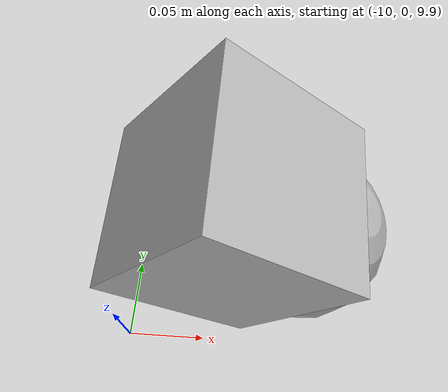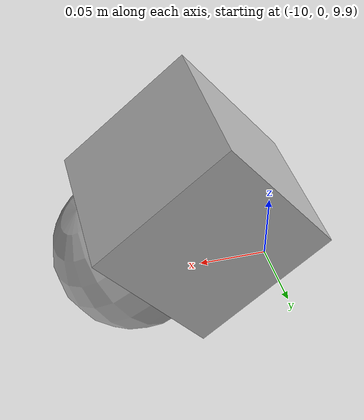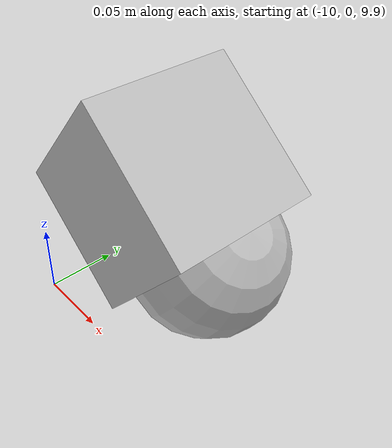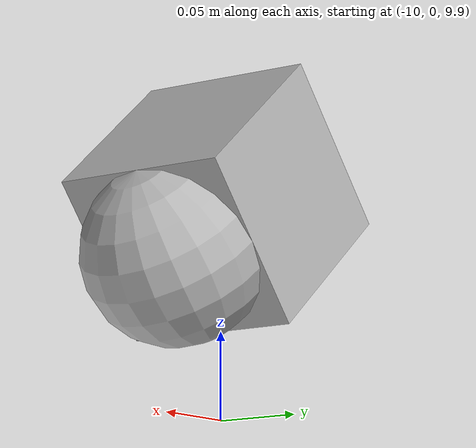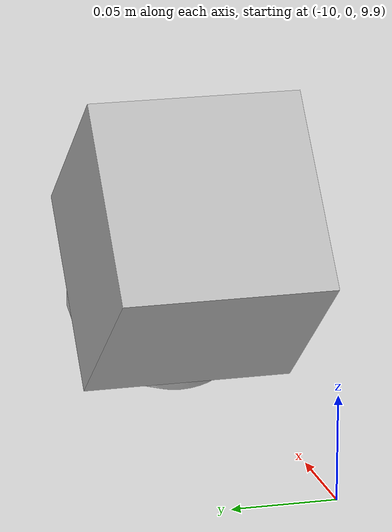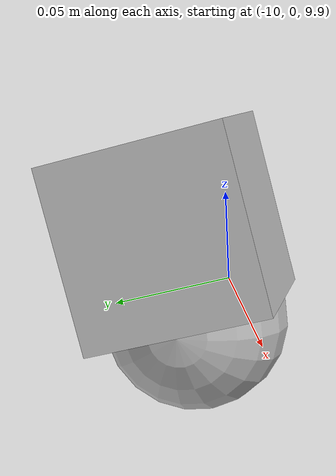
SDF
<?xml version="1.0" ?>
<!--
  Optimized camera model for headless server mode with reduced CPU usage.
  Features:
  - Lower resolution (320x240)
  - Reduced update rate (5Hz)
  - Optimized for server environments
-->
<sdf version="1.6">
  <model name="wot_camera">
    <static>true</static>
    <pose>-10 0 10 0 0.7 0</pose>
    <link name="link">
      <pose>0.05 0.05 0.05 0 0 0</pose>
      <inertial>
        <mass>0.1</mass>
        <inertia>
          <ixx>0.000166667</ixx>
          <iyy>0.000166667</iyy>
          <izz>0.000166667</izz>
        </inertia>
      </inertial>
      <collision name="collision">
        <geometry>
          <box>
            <size>0.1 0.1 0.1</size>
          </box>
        </geometry>
      </collision>
      <visual name="visual">
        <geometry>
          <box>
            <size>0.1 0.1 0.1</size>
          </box>
        </geometry>
      </visual>

      <visual name="lens_visual">
        <pose>0.05 0 0 0 0 0</pose>
        <geometry>
          <sphere>
            <radius>0.05</radius>
          </sphere>
        </geometry>
      </visual>

      <sensor name="camera" type="camera">
        <camera>
          <horizontal_fov>1.047</horizontal_fov>
          <image>
            <width>320</width>
            <height>240</height>
          </image>
          <clip>
            <near>0.1</near>
            <far>100</far>
          </clip>
        </camera>
        <always_on>1</always_on>
        <update_rate>5</update_rate>
        <visualize>true</visualize>
        <topic>camera</topic>
      </sensor>
    </link>
  </model>
</sdf>
